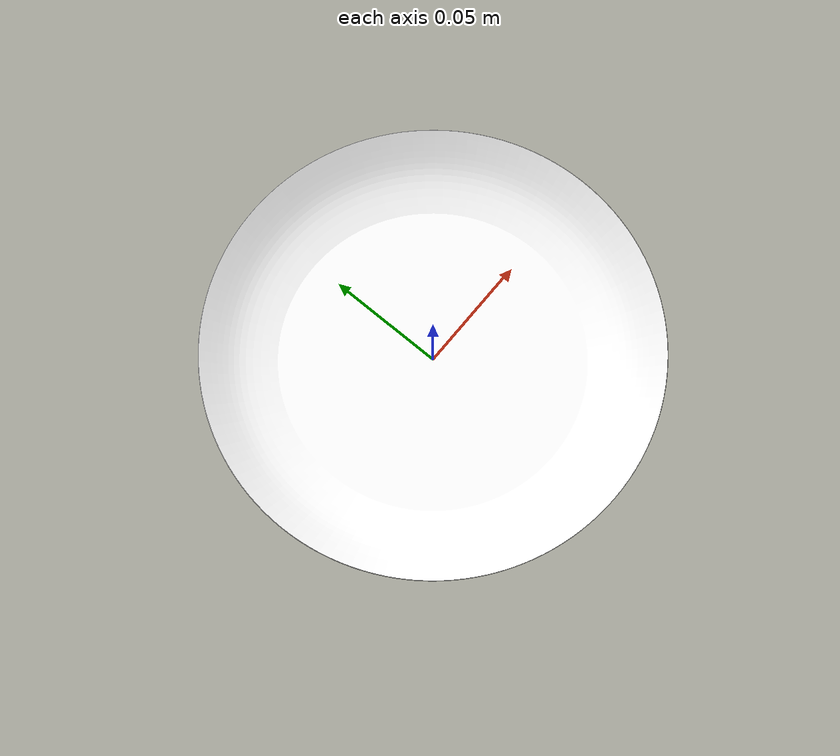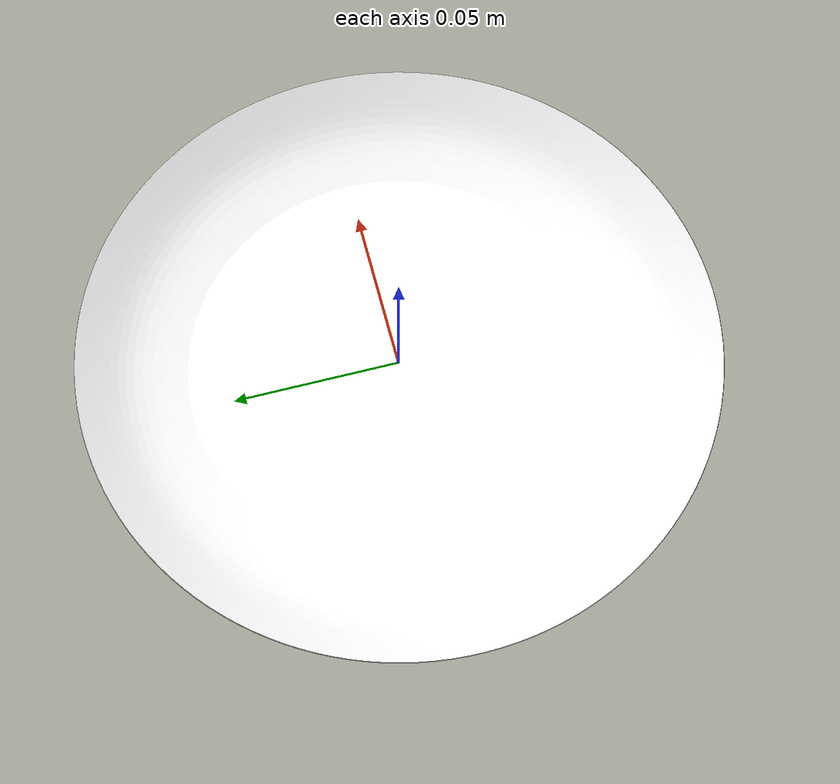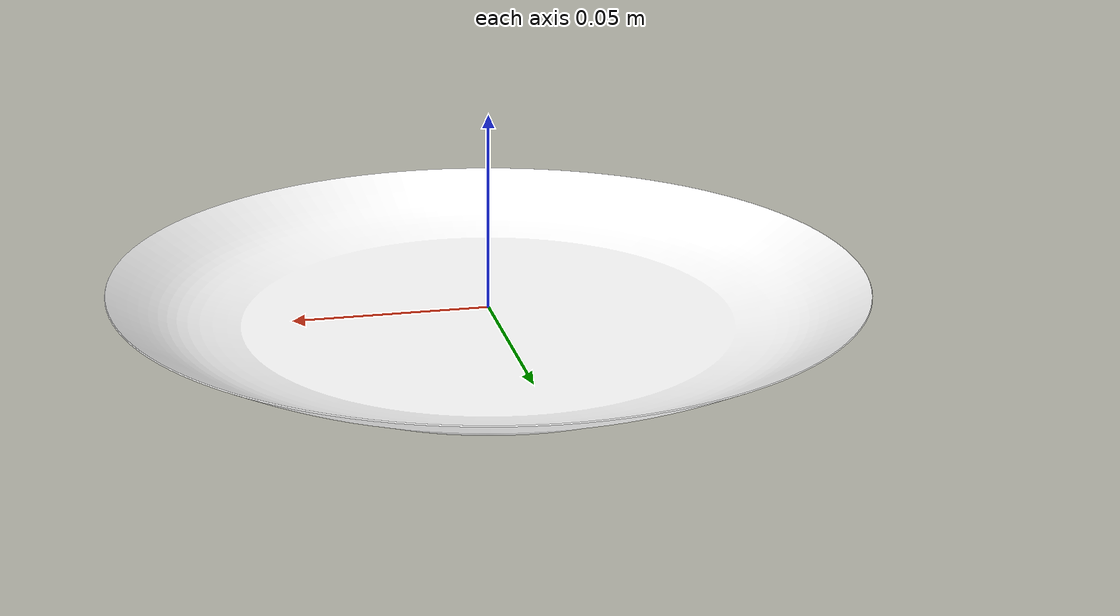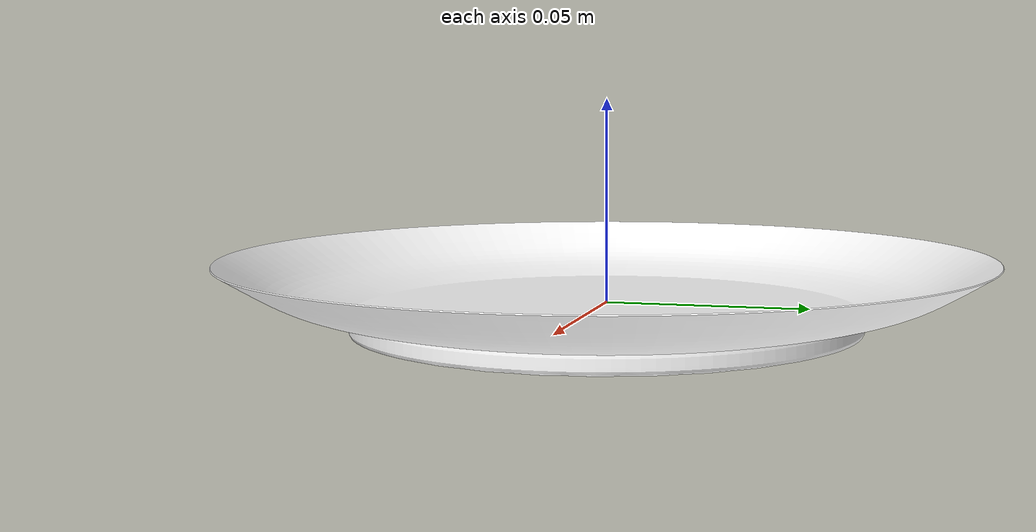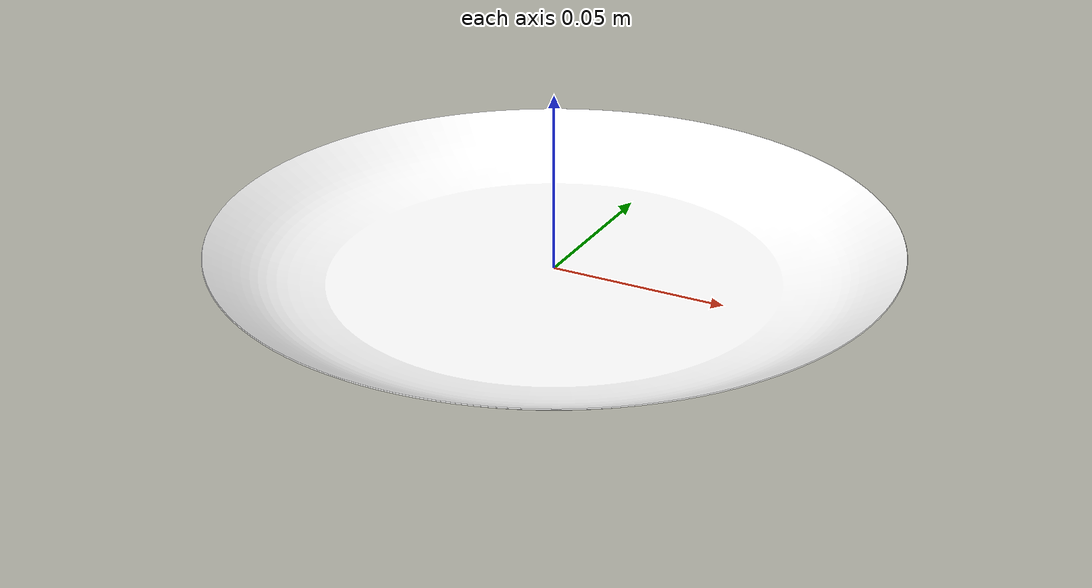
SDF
<?xml version='1.0'?>
<sdf version='1.6'>
  <model name='plate'>
    <link name='plate_link'>
      <pose frame=''>0 0 0 0 0 0</pose>
       <visual name='visual'>
        <pose frame=''>0 0 0 0 0 0</pose>
        <geometry>
          <mesh>
            <uri>model://plate/meshes/plate.dae</uri>
            <scale>1 1 1</scale>
          </mesh>
        </geometry>
        <cast_shadows>1</cast_shadows>
        <transparency>0</transparency>
      </visual>
      <inertial>
        <mass>1.0</mass>
        <inertia> <!-- inertias are tricky to compute -->
          <ixx>0.0083</ixx>       <!-- for a box: ixx = 0.083 * mass * (y*y + z*z) -->
          <ixy>0.0</ixy>         <!-- for a box: ixy = 0 -->
          <ixz>0.0</ixz>         <!-- for a box: ixz = 0 -->
          <iyy>0.0083</iyy>       <!-- for a box: iyy = 0.083 * mass * (x*x + z*z) -->
          <iyz>0.0</iyz>         <!-- for a box: iyz = 0 -->
          <izz>0.0083</izz>       <!-- for a box: izz = 0.083 * mass * (x*x + y*y) -->
        </inertia>
      </inertial>
      <collision name="collision">
        <geometry>
          <box>
            <size>0.189 0.189 0.0187</size>
          </box>
        </geometry>
      </collision>
    </link>
    <static>0</static>
    <allow_auto_disable>1</allow_auto_disable>
  </model>
</sdf>
